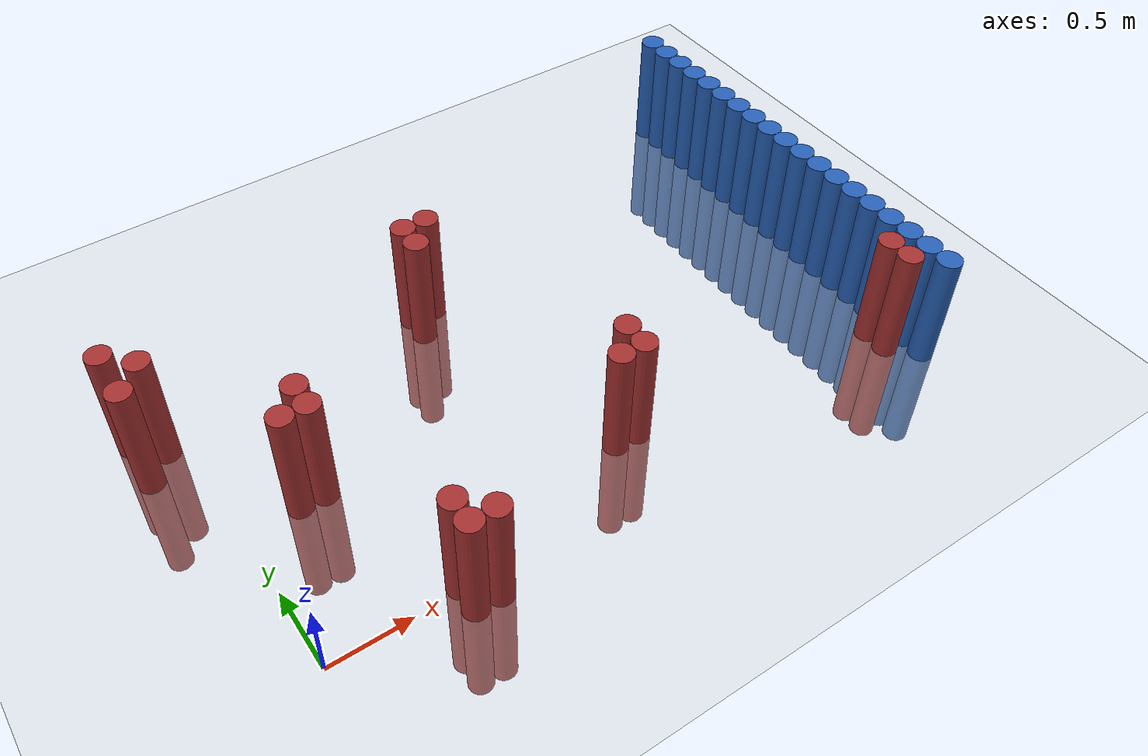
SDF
<sdf version="1.6">
 <world name="default">
  <model name="ground_plane">
   <static>1</static>
   <link name="link">
    <collision name="collision">
     <geometry><plane><normal>0 0 1</normal><size>100 100</size></plane></geometry>
     <surface><friction><ode><mu>100</mu><mu2>50</mu2></ode></friction></surface>
    </collision>
    <visual name="visual">
     <cast_shadows>0</cast_shadows>
     <geometry><plane><normal>0 0 1</normal><size>100 100</size></plane></geometry>
     <material>
      <script><uri>file://media/materials/scripts/gazebo.material</uri><name>Gazebo/Grey</name></script>
     </material>
    </visual>
   </link>
  </model>
  <model name="unit_cylinder_114">
   <static>1</static>
   <pose>3.925000 0.025000 0.000000 0.000000 0.000000 0.000000</pose>
   <link name="link">
    <inertial>
     <mass>1</mass>
     <inertia><ixx>0.145833</ixx><ixy>0</ixy><ixz>0</ixz><iyy>0.145833</iyy><iyz>0</iyz><izz>0.125</izz></inertia>
    </inertial>
    <collision name="collision">
     <geometry><cylinder><radius>0.075000</radius><length>1.5</length></cylinder></geometry>
    </collision>
    <visual name="visual">
     <geometry><cylinder><radius>0.075000</radius><length>1.5</length></cylinder></geometry>
     <material>
      <ambient>0.152000 0.379000 0.720000 1</ambient>
      <diffuse>0.152000 0.379000 0.720000 1</diffuse>
     </material>
     <material>
      <script><name>Gazebo/Grey</name><uri>file://media/materials/scripts/gazebo.material</uri></script>
     </material>
    </visual>
   </link>
  </model>
  <model name="unit_cylinder_116">
   <static>1</static>
   <pose>3.925000 0.175000 0.000000 0.000000 0.000000 0.000000</pose>
   <link name="link">
    <inertial>
     <mass>1</mass>
     <inertia><ixx>0.145833</ixx><ixy>0</ixy><ixz>0</ixz><iyy>0.145833</iyy><iyz>0</iyz><izz>0.125</izz></inertia>
    </inertial>
    <collision name="collision">
     <geometry><cylinder><radius>0.075000</radius><length>1.5</length></cylinder></geometry>
    </collision>
    <visual name="visual">
     <geometry><cylinder><radius>0.075000</radius><length>1.5</length></cylinder></geometry>
     <material>
      <ambient>0.152000 0.379000 0.720000 1</ambient>
      <diffuse>0.152000 0.379000 0.720000 1</diffuse>
     </material>
     <material>
      <script><name>Gazebo/Grey</name><uri>file://media/materials/scripts/gazebo.material</uri></script>
     </material>
    </visual>
   </link>
  </model>
  <model name="unit_cylinder_118">
   <static>1</static>
   <pose>3.925000 0.325000 0.000000 0.000000 0.000000 0.000000</pose>
   <link name="link">
    <inertial>
     <mass>1</mass>
     <inertia><ixx>0.145833</ixx><ixy>0</ixy><ixz>0</ixz><iyy>0.145833</iyy><iyz>0</iyz><izz>0.125</izz></inertia>
    </inertial>
    <collision name="collision">
     <geometry><cylinder><radius>0.075000</radius><length>1.5</length></cylinder></geometry>
    </collision>
    <visual name="visual">
     <geometry><cylinder><radius>0.075000</radius><length>1.5</length></cylinder></geometry>
     <material>
      <ambient>0.152000 0.379000 0.720000 1</ambient>
      <diffuse>0.152000 0.379000 0.720000 1</diffuse>
     </material>
     <material>
      <script><name>Gazebo/Grey</name><uri>file://media/materials/scripts/gazebo.material</uri></script>
     </material>
    </visual>
   </link>
  </model>
  <model name="unit_cylinder_120">
   <static>1</static>
   <pose>3.925000 0.475000 0.000000 0.000000 0.000000 0.000000</pose>
   <link name="link">
    <inertial>
     <mass>1</mass>
     <inertia><ixx>0.145833</ixx><ixy>0</ixy><ixz>0</ixz><iyy>0.145833</iyy><iyz>0</iyz><izz>0.125</izz></inertia>
    </inertial>
    <collision name="collision">
     <geometry><cylinder><radius>0.075000</radius><length>1.5</length></cylinder></geometry>
    </collision>
    <visual name="visual">
     <geometry><cylinder><radius>0.075000</radius><length>1.5</length></cylinder></geometry>
     <material>
      <ambient>0.152000 0.379000 0.720000 1</ambient>
      <diffuse>0.152000 0.379000 0.720000 1</diffuse>
     </material>
     <material>
      <script><name>Gazebo/Grey</name><uri>file://media/materials/scripts/gazebo.material</uri></script>
     </material>
    </visual>
   </link>
  </model>
  <model name="unit_cylinder_122">
   <static>1</static>
   <pose>3.925000 0.625000 0.000000 0.000000 0.000000 0.000000</pose>
   <link name="link">
    <inertial>
     <mass>1</mass>
     <inertia><ixx>0.145833</ixx><ixy>0</ixy><ixz>0</ixz><iyy>0.145833</iyy><iyz>0</iyz><izz>0.125</izz></inertia>
    </inertial>
    <collision name="collision">
     <geometry><cylinder><radius>0.075000</radius><length>1.5</length></cylinder></geometry>
    </collision>
    <visual name="visual">
     <geometry><cylinder><radius>0.075000</radius><length>1.5</length></cylinder></geometry>
     <material>
      <ambient>0.152000 0.379000 0.720000 1</ambient>
      <diffuse>0.152000 0.379000 0.720000 1</diffuse>
     </material>
     <material>
      <script><name>Gazebo/Grey</name><uri>file://media/materials/scripts/gazebo.material</uri></script>
     </material>
    </visual>
   </link>
  </model>
  <model name="unit_cylinder_124">
   <static>1</static>
   <pose>3.925000 0.775000 0.000000 0.000000 0.000000 0.000000</pose>
   <link name="link">
    <inertial>
     <mass>1</mass>
     <inertia><ixx>0.145833</ixx><ixy>0</ixy><ixz>0</ixz><iyy>0.145833</iyy><iyz>0</iyz><izz>0.125</izz></inertia>
    </inertial>
    <collision name="collision">
     <geometry><cylinder><radius>0.075000</radius><length>1.5</length></cylinder></geometry>
    </collision>
    <visual name="visual">
     <geometry><cylinder><radius>0.075000</radius><length>1.5</length></cylinder></geometry>
     <material>
      <ambient>0.152000 0.379000 0.720000 1</ambient>
      <diffuse>0.152000 0.379000 0.720000 1</diffuse>
     </material>
     <material>
      <script><name>Gazebo/Grey</name><uri>file://media/materials/scripts/gazebo.material</uri></script>
     </material>
    </visual>
   </link>
  </model>
  <model name="unit_cylinder_126">
   <static>1</static>
   <pose>3.925000 0.925000 0.000000 0.000000 0.000000 0.000000</pose>
   <link name="link">
    <inertial>
     <mass>1</mass>
     <inertia><ixx>0.145833</ixx><ixy>0</ixy><ixz>0</ixz><iyy>0.145833</iyy><iyz>0</iyz><izz>0.125</izz></inertia>
    </inertial>
    <collision name="collision">
     <geometry><cylinder><radius>0.075000</radius><length>1.5</length></cylinder></geometry>
    </collision>
    <visual name="visual">
     <geometry><cylinder><radius>0.075000</radius><length>1.5</length></cylinder></geometry>
     <material>
      <ambient>0.152000 0.379000 0.720000 1</ambient>
      <diffuse>0.152000 0.379000 0.720000 1</diffuse>
     </material>
     <material>
      <script><name>Gazebo/Grey</name><uri>file://media/materials/scripts/gazebo.material</uri></script>
     </material>
    </visual>
   </link>
  </model>
  <model name="unit_cylinder_128">
   <static>1</static>
   <pose>3.925000 1.075000 0.000000 0.000000 0.000000 0.000000</pose>
   <link name="link">
    <inertial>
     <mass>1</mass>
     <inertia><ixx>0.145833</ixx><ixy>0</ixy><ixz>0</ixz><iyy>0.145833</iyy><iyz>0</iyz><izz>0.125</izz></inertia>
    </inertial>
    <collision name="collision">
     <geometry><cylinder><radius>0.075000</radius><length>1.5</length></cylinder></geometry>
    </collision>
    <visual name="visual">
     <geometry><cylinder><radius>0.075000</radius><length>1.5</length></cylinder></geometry>
     <material>
      <ambient>0.152000 0.379000 0.720000 1</ambient>
      <diffuse>0.152000 0.379000 0.720000 1</diffuse>
     </material>
     <material>
      <script><name>Gazebo/Grey</name><uri>file://media/materials/scripts/gazebo.material</uri></script>
     </material>
    </visual>
   </link>
  </model>
  <model name="unit_cylinder_130">
   <static>1</static>
   <pose>3.925000 1.225000 0.000000 0.000000 0.000000 0.000000</pose>
   <link name="link">
    <inertial>
     <mass>1</mass>
     <inertia><ixx>0.145833</ixx><ixy>0</ixy><ixz>0</ixz><iyy>0.145833</iyy><iyz>0</iyz><izz>0.125</izz></inertia>
    </inertial>
    <collision name="collision">
     <geometry><cylinder><radius>0.075000</radius><length>1.5</length></cylinder></geometry>
    </collision>
    <visual name="visual">
     <geometry><cylinder><radius>0.075000</radius><length>1.5</length></cylinder></geometry>
     <material>
      <ambient>0.152000 0.379000 0.720000 1</ambient>
      <diffuse>0.152000 0.379000 0.720000 1</diffuse>
     </material>
     <material>
      <script><name>Gazebo/Grey</name><uri>file://media/materials/scripts/gazebo.material</uri></script>
     </material>
    </visual>
   </link>
  </model>
  <model name="unit_cylinder_132">
   <static>1</static>
   <pose>3.925000 1.375000 0.000000 0.000000 0.000000 0.000000</pose>
   <link name="link">
    <inertial>
     <mass>1</mass>
     <inertia><ixx>0.145833</ixx><ixy>0</ixy><ixz>0</ixz><iyy>0.145833</iyy><iyz>0</iyz><izz>0.125</izz></inertia>
    </inertial>
    <collision name="collision">
     <geometry><cylinder><radius>0.075000</radius><length>1.5</length></cylinder></geometry>
    </collision>
    <visual name="visual">
     <geometry><cylinder><radius>0.075000</radius><length>1.5</length></cylinder></geometry>
     <material>
      <ambient>0.152000 0.379000 0.720000 1</ambient>
      <diffuse>0.152000 0.379000 0.720000 1</diffuse>
     </material>
     <material>
      <script><name>Gazebo/Grey</name><uri>file://media/materials/scripts/gazebo.material</uri></script>
     </material>
    </visual>
   </link>
  </model>
  <model name="unit_cylinder_134">
   <static>1</static>
   <pose>3.925000 1.525000 0.000000 0.000000 0.000000 0.000000</pose>
   <link name="link">
    <inertial>
     <mass>1</mass>
     <inertia><ixx>0.145833</ixx><ixy>0</ixy><ixz>0</ixz><iyy>0.145833</iyy><iyz>0</iyz><izz>0.125</izz></inertia>
    </inertial>
    <collision name="collision">
     <geometry><cylinder><radius>0.075000</radius><length>1.5</length></cylinder></geometry>
    </collision>
    <visual name="visual">
     <geometry><cylinder><radius>0.075000</radius><length>1.5</length></cylinder></geometry>
     <material>
      <ambient>0.152000 0.379000 0.720000 1</ambient>
      <diffuse>0.152000 0.379000 0.720000 1</diffuse>
     </material>
     <material>
      <script><name>Gazebo/Grey</name><uri>file://media/materials/scripts/gazebo.material</uri></script>
     </material>
    </visual>
   </link>
  </model>
  <model name="unit_cylinder_136">
   <static>1</static>
   <pose>3.925000 1.675000 0.000000 0.000000 0.000000 0.000000</pose>
   <link name="link">
    <inertial>
     <mass>1</mass>
     <inertia><ixx>0.145833</ixx><ixy>0</ixy><ixz>0</ixz><iyy>0.145833</iyy><iyz>0</iyz><izz>0.125</izz></inertia>
    </inertial>
    <collision name="collision">
     <geometry><cylinder><radius>0.075000</radius><length>1.5</length></cylinder></geometry>
    </collision>
    <visual name="visual">
     <geometry><cylinder><radius>0.075000</radius><length>1.5</length></cylinder></geometry>
     <material>
      <ambient>0.152000 0.379000 0.720000 1</ambient>
      <diffuse>0.152000 0.379000 0.720000 1</diffuse>
     </material>
     <material>
      <script><name>Gazebo/Grey</name><uri>file://media/materials/scripts/gazebo.material</uri></script>
     </material>
    </visual>
   </link>
  </model>
  <model name="unit_cylinder_138">
   <static>1</static>
   <pose>3.925000 1.825000 0.000000 0.000000 0.000000 0.000000</pose>
   <link name="link">
    <inertial>
     <mass>1</mass>
     <inertia><ixx>0.145833</ixx><ixy>0</ixy><ixz>0</ixz><iyy>0.145833</iyy><iyz>0</iyz><izz>0.125</izz></inertia>
    </inertial>
    <collision name="collision">
     <geometry><cylinder><radius>0.075000</radius><length>1.5</length></cylinder></geometry>
    </collision>
    <visual name="visual">
     <geometry><cylinder><radius>0.075000</radius><length>1.5</length></cylinder></geometry>
     <material>
      <ambient>0.152000 0.379000 0.720000 1</ambient>
      <diffuse>0.152000 0.379000 0.720000 1</diffuse>
     </material>
     <material>
      <script><name>Gazebo/Grey</name><uri>file://media/materials/scripts/gazebo.material</uri></script>
     </material>
    </visual>
   </link>
  </model>
  <model name="unit_cylinder_140">
   <static>1</static>
   <pose>3.925000 1.975000 0.000000 0.000000 0.000000 0.000000</pose>
   <link name="link">
    <inertial>
     <mass>1</mass>
     <inertia><ixx>0.145833</ixx><ixy>0</ixy><ixz>0</ixz><iyy>0.145833</iyy><iyz>0</iyz><izz>0.125</izz></inertia>
    </inertial>
    <collision name="collision">
     <geometry><cylinder><radius>0.075000</radius><length>1.5</length></cylinder></geometry>
    </collision>
    <visual name="visual">
     <geometry><cylinder><radius>0.075000</radius><length>1.5</length></cylinder></geometry>
     <material>
      <ambient>0.152000 0.379000 0.720000 1</ambient>
      <diffuse>0.152000 0.379000 0.720000 1</diffuse>
     </material>
     <material>
      <script><name>Gazebo/Grey</name><uri>file://media/materials/scripts/gazebo.material</uri></script>
     </material>
    </visual>
   </link>
  </model>
  <model name="unit_cylinder_142">
   <static>1</static>
   <pose>3.925000 2.125000 0.000000 0.000000 0.000000 0.000000</pose>
   <link name="link">
    <inertial>
     <mass>1</mass>
     <inertia><ixx>0.145833</ixx><ixy>0</ixy><ixz>0</ixz><iyy>0.145833</iyy><iyz>0</iyz><izz>0.125</izz></inertia>
    </inertial>
    <collision name="collision">
     <geometry><cylinder><radius>0.075000</radius><length>1.5</length></cylinder></geometry>
    </collision>
    <visual name="visual">
     <geometry><cylinder><radius>0.075000</radius><length>1.5</length></cylinder></geometry>
     <material>
      <ambient>0.152000 0.379000 0.720000 1</ambient>
      <diffuse>0.152000 0.379000 0.720000 1</diffuse>
     </material>
     <material>
      <script><name>Gazebo/Grey</name><uri>file://media/materials/scripts/gazebo.material</uri></script>
     </material>
    </visual>
   </link>
  </model>
  <model name="unit_cylinder_144">
   <static>1</static>
   <pose>3.925000 2.275000 0.000000 0.000000 0.000000 0.000000</pose>
   <link name="link">
    <inertial>
     <mass>1</mass>
     <inertia><ixx>0.145833</ixx><ixy>0</ixy><ixz>0</ixz><iyy>0.145833</iyy><iyz>0</iyz><izz>0.125</izz></inertia>
    </inertial>
    <collision name="collision">
     <geometry><cylinder><radius>0.075000</radius><length>1.5</length></cylinder></geometry>
    </collision>
    <visual name="visual">
     <geometry><cylinder><radius>0.075000</radius><length>1.5</length></cylinder></geometry>
     <material>
      <ambient>0.152000 0.379000 0.720000 1</ambient>
      <diffuse>0.152000 0.379000 0.720000 1</diffuse>
     </material>
     <material>
      <script><name>Gazebo/Grey</name><uri>file://media/materials/scripts/gazebo.material</uri></script>
     </material>
    </visual>
   </link>
  </model>
  <model name="unit_cylinder_146">
   <static>1</static>
   <pose>3.925000 2.425000 0.000000 0.000000 0.000000 0.000000</pose>
   <link name="link">
    <inertial>
     <mass>1</mass>
     <inertia><ixx>0.145833</ixx><ixy>0</ixy><ixz>0</ixz><iyy>0.145833</iyy><iyz>0</iyz><izz>0.125</izz></inertia>
    </inertial>
    <collision name="collision">
     <geometry><cylinder><radius>0.075000</radius><length>1.5</length></cylinder></geometry>
    </collision>
    <visual name="visual">
     <geometry><cylinder><radius>0.075000</radius><length>1.5</length></cylinder></geometry>
     <material>
      <ambient>0.152000 0.379000 0.720000 1</ambient>
      <diffuse>0.152000 0.379000 0.720000 1</diffuse>
     </material>
     <material>
      <script><name>Gazebo/Grey</name><uri>file://media/materials/scripts/gazebo.material</uri></script>
     </material>
    </visual>
   </link>
  </model>
  <model name="unit_cylinder_148">
   <static>1</static>
   <pose>3.925000 2.575000 0.000000 0.000000 0.000000 0.000000</pose>
   <link name="link">
    <inertial>
     <mass>1</mass>
     <inertia><ixx>0.145833</ixx><ixy>0</ixy><ixz>0</ixz><iyy>0.145833</iyy><iyz>0</iyz><izz>0.125</izz></inertia>
    </inertial>
    <collision name="collision">
     <geometry><cylinder><radius>0.075000</radius><length>1.5</length></cylinder></geometry>
    </collision>
    <visual name="visual">
     <geometry><cylinder><radius>0.075000</radius><length>1.5</length></cylinder></geometry>
     <material>
      <ambient>0.152000 0.379000 0.720000 1</ambient>
      <diffuse>0.152000 0.379000 0.720000 1</diffuse>
     </material>
     <material>
      <script><name>Gazebo/Grey</name><uri>file://media/materials/scripts/gazebo.material</uri></script>
     </material>
    </visual>
   </link>
  </model>
  <model name="unit_cylinder_295">
   <static>1</static>
   <pose>-0.275000 1.525000 0.000000 0.000000 0.000000 0.000000</pose>
   <link name="link">
    <inertial>
     <mass>1</mass>
     <inertia><ixx>0.145833</ixx><ixy>0</ixy><ixz>0</ixz><iyy>0.145833</iyy><iyz>0</iyz><izz>0.125</izz></inertia>
    </inertial>
    <collision name="collision">
     <geometry><cylinder><radius>0.075000</radius><length>1.5</length></cylinder></geometry>
    </collision>
    <visual name="visual">
     <geometry><cylinder><radius>0.075000</radius><length>1.5</length></cylinder></geometry>
     <material>
      <ambient>0.648000 0.192000 0.192000 1</ambient>
      <diffuse>0.648000 0.192000 0.192000 1</diffuse>
     </material>
     <material>
      <script><name>Gazebo/Grey</name><uri>file://media/materials/scripts/gazebo.material</uri></script>
     </material>
    </visual>
   </link>
  </model>
  <model name="unit_cylinder_296">
   <static>1</static>
   <pose>-0.275000 1.825000 0.000000 0.000000 0.000000 0.000000</pose>
   <link name="link">
    <inertial>
     <mass>1</mass>
     <inertia><ixx>0.145833</ixx><ixy>0</ixy><ixz>0</ixz><iyy>0.145833</iyy><iyz>0</iyz><izz>0.125</izz></inertia>
    </inertial>
    <collision name="collision">
     <geometry><cylinder><radius>0.075000</radius><length>1.5</length></cylinder></geometry>
    </collision>
    <visual name="visual">
     <geometry><cylinder><radius>0.075000</radius><length>1.5</length></cylinder></geometry>
     <material>
      <ambient>0.648000 0.192000 0.192000 1</ambient>
      <diffuse>0.648000 0.192000 0.192000 1</diffuse>
     </material>
     <material>
      <script><name>Gazebo/Grey</name><uri>file://media/materials/scripts/gazebo.material</uri></script>
     </material>
    </visual>
   </link>
  </model>
  <model name="unit_cylinder_299">
   <static>1</static>
   <pose>-0.125000 1.675000 0.000000 0.000000 0.000000 0.000000</pose>
   <link name="link">
    <inertial>
     <mass>1</mass>
     <inertia><ixx>0.145833</ixx><ixy>0</ixy><ixz>0</ixz><iyy>0.145833</iyy><iyz>0</iyz><izz>0.125</izz></inertia>
    </inertial>
    <collision name="collision">
     <geometry><cylinder><radius>0.075000</radius><length>1.5</length></cylinder></geometry>
    </collision>
    <visual name="visual">
     <geometry><cylinder><radius>0.075000</radius><length>1.5</length></cylinder></geometry>
     <material>
      <ambient>0.648000 0.192000 0.192000 1</ambient>
      <diffuse>0.648000 0.192000 0.192000 1</diffuse>
     </material>
     <material>
      <script><name>Gazebo/Grey</name><uri>file://media/materials/scripts/gazebo.material</uri></script>
     </material>
    </visual>
   </link>
  </model>
  <model name="unit_cylinder_300">
   <static>1</static>
   <pose>0.325000 0.925000 0.000000 0.000000 0.000000 0.000000</pose>
   <link name="link">
    <inertial>
     <mass>1</mass>
     <inertia><ixx>0.145833</ixx><ixy>0</ixy><ixz>0</ixz><iyy>0.145833</iyy><iyz>0</iyz><izz>0.125</izz></inertia>
    </inertial>
    <collision name="collision">
     <geometry><cylinder><radius>0.075000</radius><length>1.5</length></cylinder></geometry>
    </collision>
    <visual name="visual">
     <geometry><cylinder><radius>0.075000</radius><length>1.5</length></cylinder></geometry>
     <material>
      <ambient>0.648000 0.192000 0.192000 1</ambient>
      <diffuse>0.648000 0.192000 0.192000 1</diffuse>
     </material>
     <material>
      <script><name>Gazebo/Grey</name><uri>file://media/materials/scripts/gazebo.material</uri></script>
     </material>
    </visual>
   </link>
  </model>
  <model name="unit_cylinder_301">
   <static>1</static>
   <pose>0.475000 0.925000 0.000000 0.000000 0.000000 0.000000</pose>
   <link name="link">
    <inertial>
     <mass>1</mass>
     <inertia><ixx>0.145833</ixx><ixy>0</ixy><ixz>0</ixz><iyy>0.145833</iyy><iyz>0</iyz><izz>0.125</izz></inertia>
    </inertial>
    <collision name="collision">
     <geometry><cylinder><radius>0.075000</radius><length>1.5</length></cylinder></geometry>
    </collision>
    <visual name="visual">
     <geometry><cylinder><radius>0.075000</radius><length>1.5</length></cylinder></geometry>
     <material>
      <ambient>0.648000 0.192000 0.192000 1</ambient>
      <diffuse>0.648000 0.192000 0.192000 1</diffuse>
     </material>
     <material>
      <script><name>Gazebo/Grey</name><uri>file://media/materials/scripts/gazebo.material</uri></script>
     </material>
    </visual>
   </link>
  </model>
  <model name="unit_cylinder_302">
   <static>1</static>
   <pose>0.475000 1.075000 0.000000 0.000000 0.000000 0.000000</pose>
   <link name="link">
    <inertial>
     <mass>1</mass>
     <inertia><ixx>0.145833</ixx><ixy>0</ixy><ixz>0</ixz><iyy>0.145833</iyy><iyz>0</iyz><izz>0.125</izz></inertia>
    </inertial>
    <collision name="collision">
     <geometry><cylinder><radius>0.075000</radius><length>1.5</length></cylinder></geometry>
    </collision>
    <visual name="visual">
     <geometry><cylinder><radius>0.075000</radius><length>1.5</length></cylinder></geometry>
     <material>
      <ambient>0.648000 0.192000 0.192000 1</ambient>
      <diffuse>0.648000 0.192000 0.192000 1</diffuse>
     </material>
     <material>
      <script><name>Gazebo/Grey</name><uri>file://media/materials/scripts/gazebo.material</uri></script>
     </material>
    </visual>
   </link>
  </model>
  <model name="unit_cylinder_303">
   <static>1</static>
   <pose>0.775000 -0.125000 0.000000 0.000000 0.000000 0.000000</pose>
   <link name="link">
    <inertial>
     <mass>1</mass>
     <inertia><ixx>0.145833</ixx><ixy>0</ixy><ixz>0</ixz><iyy>0.145833</iyy><iyz>0</iyz><izz>0.125</izz></inertia>
    </inertial>
    <collision name="collision">
     <geometry><cylinder><radius>0.075000</radius><length>1.5</length></cylinder></geometry>
    </collision>
    <visual name="visual">
     <geometry><cylinder><radius>0.075000</radius><length>1.5</length></cylinder></geometry>
     <material>
      <ambient>0.648000 0.192000 0.192000 1</ambient>
      <diffuse>0.648000 0.192000 0.192000 1</diffuse>
     </material>
     <material>
      <script><name>Gazebo/Grey</name><uri>file://media/materials/scripts/gazebo.material</uri></script>
     </material>
    </visual>
   </link>
  </model>
  <model name="unit_cylinder_304">
   <static>1</static>
   <pose>0.775000 0.025000 0.000000 0.000000 0.000000 0.000000</pose>
   <link name="link">
    <inertial>
     <mass>1</mass>
     <inertia><ixx>0.145833</ixx><ixy>0</ixy><ixz>0</ixz><iyy>0.145833</iyy><iyz>0</iyz><izz>0.125</izz></inertia>
    </inertial>
    <collision name="collision">
     <geometry><cylinder><radius>0.075000</radius><length>1.5</length></cylinder></geometry>
    </collision>
    <visual name="visual">
     <geometry><cylinder><radius>0.075000</radius><length>1.5</length></cylinder></geometry>
     <material>
      <ambient>0.648000 0.192000 0.192000 1</ambient>
      <diffuse>0.648000 0.192000 0.192000 1</diffuse>
     </material>
     <material>
      <script><name>Gazebo/Grey</name><uri>file://media/materials/scripts/gazebo.material</uri></script>
     </material>
    </visual>
   </link>
  </model>
  <model name="unit_cylinder_305">
   <static>1</static>
   <pose>0.925000 -0.125000 0.000000 0.000000 0.000000 0.000000</pose>
   <link name="link">
    <inertial>
     <mass>1</mass>
     <inertia><ixx>0.145833</ixx><ixy>0</ixy><ixz>0</ixz><iyy>0.145833</iyy><iyz>0</iyz><izz>0.125</izz></inertia>
    </inertial>
    <collision name="collision">
     <geometry><cylinder><radius>0.075000</radius><length>1.5</length></cylinder></geometry>
    </collision>
    <visual name="visual">
     <geometry><cylinder><radius>0.075000</radius><length>1.5</length></cylinder></geometry>
     <material>
      <ambient>0.648000 0.192000 0.192000 1</ambient>
      <diffuse>0.648000 0.192000 0.192000 1</diffuse>
     </material>
     <material>
      <script><name>Gazebo/Grey</name><uri>file://media/materials/scripts/gazebo.material</uri></script>
     </material>
    </visual>
   </link>
  </model>
  <model name="unit_cylinder_306">
   <static>1</static>
   <pose>1.525000 1.675000 0.000000 0.000000 0.000000 0.000000</pose>
   <link name="link">
    <inertial>
     <mass>1</mass>
     <inertia><ixx>0.145833</ixx><ixy>0</ixy><ixz>0</ixz><iyy>0.145833</iyy><iyz>0</iyz><izz>0.125</izz></inertia>
    </inertial>
    <collision name="collision">
     <geometry><cylinder><radius>0.075000</radius><length>1.5</length></cylinder></geometry>
    </collision>
    <visual name="visual">
     <geometry><cylinder><radius>0.075000</radius><length>1.5</length></cylinder></geometry>
     <material>
      <ambient>0.648000 0.192000 0.192000 1</ambient>
      <diffuse>0.648000 0.192000 0.192000 1</diffuse>
     </material>
     <material>
      <script><name>Gazebo/Grey</name><uri>file://media/materials/scripts/gazebo.material</uri></script>
     </material>
    </visual>
   </link>
  </model>
  <model name="unit_cylinder_307">
   <static>1</static>
   <pose>1.525000 1.825000 0.000000 0.000000 0.000000 0.000000</pose>
   <link name="link">
    <inertial>
     <mass>1</mass>
     <inertia><ixx>0.145833</ixx><ixy>0</ixy><ixz>0</ixz><iyy>0.145833</iyy><iyz>0</iyz><izz>0.125</izz></inertia>
    </inertial>
    <collision name="collision">
     <geometry><cylinder><radius>0.075000</radius><length>1.5</length></cylinder></geometry>
    </collision>
    <visual name="visual">
     <geometry><cylinder><radius>0.075000</radius><length>1.5</length></cylinder></geometry>
     <material>
      <ambient>0.648000 0.192000 0.192000 1</ambient>
      <diffuse>0.648000 0.192000 0.192000 1</diffuse>
     </material>
     <material>
      <script><name>Gazebo/Grey</name><uri>file://media/materials/scripts/gazebo.material</uri></script>
     </material>
    </visual>
   </link>
  </model>
  <model name="unit_cylinder_308">
   <static>1</static>
   <pose>1.675000 1.825000 0.000000 0.000000 0.000000 0.000000</pose>
   <link name="link">
    <inertial>
     <mass>1</mass>
     <inertia><ixx>0.145833</ixx><ixy>0</ixy><ixz>0</ixz><iyy>0.145833</iyy><iyz>0</iyz><izz>0.125</izz></inertia>
    </inertial>
    <collision name="collision">
     <geometry><cylinder><radius>0.075000</radius><length>1.5</length></cylinder></geometry>
    </collision>
    <visual name="visual">
     <geometry><cylinder><radius>0.075000</radius><length>1.5</length></cylinder></geometry>
     <material>
      <ambient>0.648000 0.192000 0.192000 1</ambient>
      <diffuse>0.648000 0.192000 0.192000 1</diffuse>
     </material>
     <material>
      <script><name>Gazebo/Grey</name><uri>file://media/materials/scripts/gazebo.material</uri></script>
     </material>
    </visual>
   </link>
  </model>
  <model name="unit_cylinder_309">
   <static>1</static>
   <pose>1.975000 0.325000 0.000000 0.000000 0.000000 0.000000</pose>
   <link name="link">
    <inertial>
     <mass>1</mass>
     <inertia><ixx>0.145833</ixx><ixy>0</ixy><ixz>0</ixz><iyy>0.145833</iyy><iyz>0</iyz><izz>0.125</izz></inertia>
    </inertial>
    <collision name="collision">
     <geometry><cylinder><radius>0.075000</radius><length>1.5</length></cylinder></geometry>
    </collision>
    <visual name="visual">
     <geometry><cylinder><radius>0.075000</radius><length>1.5</length></cylinder></geometry>
     <material>
      <ambient>0.648000 0.192000 0.192000 1</ambient>
      <diffuse>0.648000 0.192000 0.192000 1</diffuse>
     </material>
     <material>
      <script><name>Gazebo/Grey</name><uri>file://media/materials/scripts/gazebo.material</uri></script>
     </material>
    </visual>
   </link>
  </model>
  <model name="unit_cylinder_312">
   <static>1</static>
   <pose>2.125000 0.325000 0.000000 0.000000 0.000000 0.000000</pose>
   <link name="link">
    <inertial>
     <mass>1</mass>
     <inertia><ixx>0.145833</ixx><ixy>0</ixy><ixz>0</ixz><iyy>0.145833</iyy><iyz>0</iyz><izz>0.125</izz></inertia>
    </inertial>
    <collision name="collision">
     <geometry><cylinder><radius>0.075000</radius><length>1.5</length></cylinder></geometry>
    </collision>
    <visual name="visual">
     <geometry><cylinder><radius>0.075000</radius><length>1.5</length></cylinder></geometry>
     <material>
      <ambient>0.648000 0.192000 0.192000 1</ambient>
      <diffuse>0.648000 0.192000 0.192000 1</diffuse>
     </material>
     <material>
      <script><name>Gazebo/Grey</name><uri>file://media/materials/scripts/gazebo.material</uri></script>
     </material>
    </visual>
   </link>
  </model>
  <model name="unit_cylinder_313">
   <static>1</static>
   <pose>2.125000 0.475000 0.000000 0.000000 0.000000 0.000000</pose>
   <link name="link">
    <inertial>
     <mass>1</mass>
     <inertia><ixx>0.145833</ixx><ixy>0</ixy><ixz>0</ixz><iyy>0.145833</iyy><iyz>0</iyz><izz>0.125</izz></inertia>
    </inertial>
    <collision name="collision">
     <geometry><cylinder><radius>0.075000</radius><length>1.5</length></cylinder></geometry>
    </collision>
    <visual name="visual">
     <geometry><cylinder><radius>0.075000</radius><length>1.5</length></cylinder></geometry>
     <material>
      <ambient>0.648000 0.192000 0.192000 1</ambient>
      <diffuse>0.648000 0.192000 0.192000 1</diffuse>
     </material>
     <material>
      <script><name>Gazebo/Grey</name><uri>file://media/materials/scripts/gazebo.material</uri></script>
     </material>
    </visual>
   </link>
  </model>
  <model name="unit_cylinder_326">
   <static>1</static>
   <pose>3.775000 0.025000 0.000000 0.000000 0.000000 0.000000</pose>
   <link name="link">
    <inertial>
     <mass>1</mass>
     <inertia><ixx>0.145833</ixx><ixy>0</ixy><ixz>0</ixz><iyy>0.145833</iyy><iyz>0</iyz><izz>0.125</izz></inertia>
    </inertial>
    <collision name="collision">
     <geometry><cylinder><radius>0.075000</radius><length>1.5</length></cylinder></geometry>
    </collision>
    <visual name="visual">
     <geometry><cylinder><radius>0.075000</radius><length>1.5</length></cylinder></geometry>
     <material>
      <ambient>0.648000 0.192000 0.192000 1</ambient>
      <diffuse>0.648000 0.192000 0.192000 1</diffuse>
     </material>
     <material>
      <script><name>Gazebo/Grey</name><uri>file://media/materials/scripts/gazebo.material</uri></script>
     </material>
    </visual>
   </link>
  </model>
  <model name="unit_cylinder_327">
   <static>1</static>
   <pose>3.775000 0.175000 0.000000 0.000000 0.000000 0.000000</pose>
   <link name="link">
    <inertial>
     <mass>1</mass>
     <inertia><ixx>0.145833</ixx><ixy>0</ixy><ixz>0</ixz><iyy>0.145833</iyy><iyz>0</iyz><izz>0.125</izz></inertia>
    </inertial>
    <collision name="collision">
     <geometry><cylinder><radius>0.075000</radius><length>1.5</length></cylinder></geometry>
    </collision>
    <visual name="visual">
     <geometry><cylinder><radius>0.075000</radius><length>1.5</length></cylinder></geometry>
     <material>
      <ambient>0.648000 0.192000 0.192000 1</ambient>
      <diffuse>0.648000 0.192000 0.192000 1</diffuse>
     </material>
     <material>
      <script><name>Gazebo/Grey</name><uri>file://media/materials/scripts/gazebo.material</uri></script>
     </material>
    </visual>
   </link>
  </model>
  <model name="unit_cylinder_342">
   <static>1</static>
   <pose>3.925000 -0.125000 0.000000 0.000000 0.000000 0.000000</pose>
   <link name="link">
    <inertial>
     <mass>1</mass>
     <inertia><ixx>0.145833</ixx><ixy>0</ixy><ixz>0</ixz><iyy>0.145833</iyy><iyz>0</iyz><izz>0.125</izz></inertia>
    </inertial>
    <collision name="collision">
     <geometry><cylinder><radius>0.075000</radius><length>1.5</length></cylinder></geometry>
    </collision>
    <visual name="visual">
     <geometry><cylinder><radius>0.075000</radius><length>1.5</length></cylinder></geometry>
     <material>
      <ambient>0.152000 0.379000 0.720000 1</ambient>
      <diffuse>0.152000 0.379000 0.720000 1</diffuse>
     </material>
     <material>
      <script><name>Gazebo/Grey</name><uri>file://media/materials/scripts/gazebo.material</uri></script>
     </material>
    </visual>
   </link>
  </model>
  <model name="unit_cylinder_343">
   <static>1</static>
   <pose>3.925000 0.025000 0.000000 0.000000 0.000000 0.000000</pose>
   <link name="link">
    <inertial>
     <mass>1</mass>
     <inertia><ixx>0.145833</ixx><ixy>0</ixy><ixz>0</ixz><iyy>0.145833</iyy><iyz>0</iyz><izz>0.125</izz></inertia>
    </inertial>
    <collision name="collision">
     <geometry><cylinder><radius>0.075000</radius><length>1.5</length></cylinder></geometry>
    </collision>
    <visual name="visual">
     <geometry><cylinder><radius>0.075000</radius><length>1.5</length></cylinder></geometry>
     <material>
      <ambient>0.152000 0.379000 0.720000 1</ambient>
      <diffuse>0.152000 0.379000 0.720000 1</diffuse>
     </material>
     <material>
      <script><name>Gazebo/Grey</name><uri>file://media/materials/scripts/gazebo.material</uri></script>
     </material>
    </visual>
   </link>
  </model>
  <model name="unit_cylinder_344">
   <static>1</static>
   <pose>3.925000 0.175000 0.000000 0.000000 0.000000 0.000000</pose>
   <link name="link">
    <inertial>
     <mass>1</mass>
     <inertia><ixx>0.145833</ixx><ixy>0</ixy><ixz>0</ixz><iyy>0.145833</iyy><iyz>0</iyz><izz>0.125</izz></inertia>
    </inertial>
    <collision name="collision">
     <geometry><cylinder><radius>0.075000</radius><length>1.5</length></cylinder></geometry>
    </collision>
    <visual name="visual">
     <geometry><cylinder><radius>0.075000</radius><length>1.5</length></cylinder></geometry>
     <material>
      <ambient>0.152000 0.379000 0.720000 1</ambient>
      <diffuse>0.152000 0.379000 0.720000 1</diffuse>
     </material>
     <material>
      <script><name>Gazebo/Grey</name><uri>file://media/materials/scripts/gazebo.material</uri></script>
     </material>
    </visual>
   </link>
  </model>
  <model name="unit_cylinder_345">
   <static>1</static>
   <pose>3.925000 0.325000 0.000000 0.000000 0.000000 0.000000</pose>
   <link name="link">
    <inertial>
     <mass>1</mass>
     <inertia><ixx>0.145833</ixx><ixy>0</ixy><ixz>0</ixz><iyy>0.145833</iyy><iyz>0</iyz><izz>0.125</izz></inertia>
    </inertial>
    <collision name="collision">
     <geometry><cylinder><radius>0.075000</radius><length>1.5</length></cylinder></geometry>
    </collision>
    <visual name="visual">
     <geometry><cylinder><radius>0.075000</radius><length>1.5</length></cylinder></geometry>
     <material>
      <ambient>0.152000 0.379000 0.720000 1</ambient>
      <diffuse>0.152000 0.379000 0.720000 1</diffuse>
     </material>
     <material>
      <script><name>Gazebo/Grey</name><uri>file://media/materials/scripts/gazebo.material</uri></script>
     </material>
    </visual>
   </link>
  </model>
  <model name="unit_cylinder_346">
   <static>1</static>
   <pose>3.925000 0.475000 0.000000 0.000000 0.000000 0.000000</pose>
   <link name="link">
    <inertial>
     <mass>1</mass>
     <inertia><ixx>0.145833</ixx><ixy>0</ixy><ixz>0</ixz><iyy>0.145833</iyy><iyz>0</iyz><izz>0.125</izz></inertia>
    </inertial>
    <collision name="collision">
     <geometry><cylinder><radius>0.075000</radius><length>1.5</length></cylinder></geometry>
    </collision>
    <visual name="visual">
     <geometry><cylinder><radius>0.075000</radius><length>1.5</length></cylinder></geometry>
     <material>
      <ambient>0.152000 0.379000 0.720000 1</ambient>
      <diffuse>0.152000 0.379000 0.720000 1</diffuse>
     </material>
     <material>
      <script><name>Gazebo/Grey</name><uri>file://media/materials/scripts/gazebo.material</uri></script>
     </material>
    </visual>
   </link>
  </model>
  <model name="unit_cylinder_347">
   <static>1</static>
   <pose>3.925000 0.625000 0.000000 0.000000 0.000000 0.000000</pose>
   <link name="link">
    <inertial>
     <mass>1</mass>
     <inertia><ixx>0.145833</ixx><ixy>0</ixy><ixz>0</ixz><iyy>0.145833</iyy><iyz>0</iyz><izz>0.125</izz></inertia>
    </inertial>
    <collision name="collision">
     <geometry><cylinder><radius>0.075000</radius><length>1.5</length></cylinder></geometry>
    </collision>
    <visual name="visual">
     <geometry><cylinder><radius>0.075000</radius><length>1.5</length></cylinder></geometry>
     <material>
      <ambient>0.152000 0.379000 0.720000 1</ambient>
      <diffuse>0.152000 0.379000 0.720000 1</diffuse>
     </material>
     <material>
      <script><name>Gazebo/Grey</name><uri>file://media/materials/scripts/gazebo.material</uri></script>
     </material>
    </visual>
   </link>
  </model>
  <model name="unit_cylinder_348">
   <static>1</static>
   <pose>3.925000 0.775000 0.000000 0.000000 0.000000 0.000000</pose>
   <link name="link">
    <inertial>
     <mass>1</mass>
     <inertia><ixx>0.145833</ixx><ixy>0</ixy><ixz>0</ixz><iyy>0.145833</iyy><iyz>0</iyz><izz>0.125</izz></inertia>
    </inertial>
    <collision name="collision">
     <geometry><cylinder><radius>0.075000</radius><length>1.5</length></cylinder></geometry>
    </collision>
    <visual name="visual">
     <geometry><cylinder><radius>0.075000</radius><length>1.5</length></cylinder></geometry>
     <material>
      <ambient>0.152000 0.379000 0.720000 1</ambient>
      <diffuse>0.152000 0.379000 0.720000 1</diffuse>
     </material>
     <material>
      <script><name>Gazebo/Grey</name><uri>file://media/materials/scripts/gazebo.material</uri></script>
     </material>
    </visual>
   </link>
  </model>
  <model name="unit_cylinder_349">
   <static>1</static>
   <pose>3.925000 0.925000 0.000000 0.000000 0.000000 0.000000</pose>
   <link name="link">
    <inertial>
     <mass>1</mass>
     <inertia><ixx>0.145833</ixx><ixy>0</ixy><ixz>0</ixz><iyy>0.145833</iyy><iyz>0</iyz><izz>0.125</izz></inertia>
    </inertial>
    <collision name="collision">
     <geometry><cylinder><radius>0.075000</radius><length>1.5</length></cylinder></geometry>
    </collision>
    <visual name="visual">
     <geometry><cylinder><radius>0.075000</radius><length>1.5</length></cylinder></geometry>
     <material>
      <ambient>0.152000 0.379000 0.720000 1</ambient>
      <diffuse>0.152000 0.379000 0.720000 1</diffuse>
     </material>
     <material>
      <script><name>Gazebo/Grey</name><uri>file://media/materials/scripts/gazebo.material</uri></script>
     </material>
    </visual>
   </link>
  </model>
  <model name="unit_cylinder_350">
   <static>1</static>
   <pose>3.925000 1.075000 0.000000 0.000000 0.000000 0.000000</pose>
   <link name="link">
    <inertial>
     <mass>1</mass>
     <inertia><ixx>0.145833</ixx><ixy>0</ixy><ixz>0</ixz><iyy>0.145833</iyy><iyz>0</iyz><izz>0.125</izz></inertia>
    </inertial>
    <collision name="collision">
     <geometry><cylinder><radius>0.075000</radius><length>1.5</length></cylinder></geometry>
    </collision>
    <visual name="visual">
     <geometry><cylinder><radius>0.075000</radius><length>1.5</length></cylinder></geometry>
     <material>
      <ambient>0.152000 0.379000 0.720000 1</ambient>
      <diffuse>0.152000 0.379000 0.720000 1</diffuse>
     </material>
     <material>
      <script><name>Gazebo/Grey</name><uri>file://media/materials/scripts/gazebo.material</uri></script>
     </material>
    </visual>
   </link>
  </model>
  <model name="unit_cylinder_351">
   <static>1</static>
   <pose>3.925000 1.225000 0.000000 0.000000 0.000000 0.000000</pose>
   <link name="link">
    <inertial>
     <mass>1</mass>
     <inertia><ixx>0.145833</ixx><ixy>0</ixy><ixz>0</ixz><iyy>0.145833</iyy><iyz>0</iyz><izz>0.125</izz></inertia>
    </inertial>
    <collision name="collision">
     <geometry><cylinder><radius>0.075000</radius><length>1.5</length></cylinder></geometry>
    </collision>
    <visual name="visual">
     <geometry><cylinder><radius>0.075000</radius><length>1.5</length></cylinder></geometry>
     <material>
      <ambient>0.152000 0.379000 0.720000 1</ambient>
      <diffuse>0.152000 0.379000 0.720000 1</diffuse>
     </material>
     <material>
      <script><name>Gazebo/Grey</name><uri>file://media/materials/scripts/gazebo.material</uri></script>
     </material>
    </visual>
   </link>
  </model>
  <model name="unit_cylinder_352">
   <static>1</static>
   <pose>3.925000 1.375000 0.000000 0.000000 0.000000 0.000000</pose>
   <link name="link">
    <inertial>
     <mass>1</mass>
     <inertia><ixx>0.145833</ixx><ixy>0</ixy><ixz>0</ixz><iyy>0.145833</iyy><iyz>0</iyz><izz>0.125</izz></inertia>
    </inertial>
    <collision name="collision">
     <geometry><cylinder><radius>0.075000</radius><length>1.5</length></cylinder></geometry>
    </collision>
    <visual name="visual">
     <geometry><cylinder><radius>0.075000</radius><length>1.5</length></cylinder></geometry>
     <material>
      <ambient>0.152000 0.379000 0.720000 1</ambient>
      <diffuse>0.152000 0.379000 0.720000 1</diffuse>
     </material>
     <material>
      <script><name>Gazebo/Grey</name><uri>file://media/materials/scripts/gazebo.material</uri></script>
     </material>
    </visual>
   </link>
  </model>
  <model name="unit_cylinder_353">
   <static>1</static>
   <pose>3.925000 1.525000 0.000000 0.000000 0.000000 0.000000</pose>
   <link name="link">
    <inertial>
     <mass>1</mass>
     <inertia><ixx>0.145833</ixx><ixy>0</ixy><ixz>0</ixz><iyy>0.145833</iyy><iyz>0</iyz><izz>0.125</izz></inertia>
    </inertial>
    <collision name="collision">
     <geometry><cylinder><radius>0.075000</radius><length>1.5</length></cylinder></geometry>
    </collision>
    <visual name="visual">
     <geometry><cylinder><radius>0.075000</radius><length>1.5</length></cylinder></geometry>
     <material>
      <ambient>0.152000 0.379000 0.720000 1</ambient>
      <diffuse>0.152000 0.379000 0.720000 1</diffuse>
     </material>
     <material>
      <script><name>Gazebo/Grey</name><uri>file://media/materials/scripts/gazebo.material</uri></script>
     </material>
    </visual>
   </link>
  </model>
  <model name="unit_cylinder_354">
   <static>1</static>
   <pose>3.925000 1.675000 0.000000 0.000000 0.000000 0.000000</pose>
   <link name="link">
    <inertial>
     <mass>1</mass>
     <inertia><ixx>0.145833</ixx><ixy>0</ixy><ixz>0</ixz><iyy>0.145833</iyy><iyz>0</iyz><izz>0.125</izz></inertia>
    </inertial>
    <collision name="collision">
     <geometry><cylinder><radius>0.075000</radius><length>1.5</length></cylinder></geometry>
    </collision>
    <visual name="visual">
     <geometry><cylinder><radius>0.075000</radius><length>1.5</length></cylinder></geometry>
     <material>
      <ambient>0.152000 0.379000 0.720000 1</ambient>
      <diffuse>0.152000 0.379000 0.720000 1</diffuse>
     </material>
     <material>
      <script><name>Gazebo/Grey</name><uri>file://media/materials/scripts/gazebo.material</uri></script>
     </material>
    </visual>
   </link>
  </model>
  <model name="unit_cylinder_355">
   <static>1</static>
   <pose>3.925000 1.825000 0.000000 0.000000 0.000000 0.000000</pose>
   <link name="link">
    <inertial>
     <mass>1</mass>
     <inertia><ixx>0.145833</ixx><ixy>0</ixy><ixz>0</ixz><iyy>0.145833</iyy><iyz>0</iyz><izz>0.125</izz></inertia>
    </inertial>
    <collision name="collision">
     <geometry><cylinder><radius>0.075000</radius><length>1.5</length></cylinder></geometry>
    </collision>
    <visual name="visual">
     <geometry><cylinder><radius>0.075000</radius><length>1.5</length></cylinder></geometry>
     <material>
      <ambient>0.152000 0.379000 0.720000 1</ambient>
      <diffuse>0.152000 0.379000 0.720000 1</diffuse>
     </material>
     <material>
      <script><name>Gazebo/Grey</name><uri>file://media/materials/scripts/gazebo.material</uri></script>
     </material>
    </visual>
   </link>
  </model>
  <model name="unit_cylinder_356">
   <static>1</static>
   <pose>3.925000 1.975000 0.000000 0.000000 0.000000 0.000000</pose>
   <link name="link">
    <inertial>
     <mass>1</mass>
     <inertia><ixx>0.145833</ixx><ixy>0</ixy><ixz>0</ixz><iyy>0.145833</iyy><iyz>0</iyz><izz>0.125</izz></inertia>
    </inertial>
    <collision name="collision">
     <geometry><cylinder><radius>0.075000</radius><length>1.5</length></cylinder></geometry>
    </collision>
    <visual name="visual">
     <geometry><cylinder><radius>0.075000</radius><length>1.5</length></cylinder></geometry>
     <material>
      <ambient>0.152000 0.379000 0.720000 1</ambient>
      <diffuse>0.152000 0.379000 0.720000 1</diffuse>
     </material>
     <material>
      <script><name>Gazebo/Grey</name><uri>file://media/materials/scripts/gazebo.material</uri></script>
     </material>
    </visual>
   </link>
  </model>
  <model name="unit_cylinder_357">
   <static>1</static>
   <pose>3.925000 2.125000 0.000000 0.000000 0.000000 0.000000</pose>
   <link name="link">
    <inertial>
     <mass>1</mass>
     <inertia><ixx>0.145833</ixx><ixy>0</ixy><ixz>0</ixz><iyy>0.145833</iyy><iyz>0</iyz><izz>0.125</izz></inertia>
    </inertial>
    <collision name="collision">
     <geometry><cylinder><radius>0.075000</radius><length>1.5</length></cylinder></geometry>
    </collision>
    <visual name="visual">
     <geometry><cylinder><radius>0.075000</radius><length>1.5</length></cylinder></geometry>
     <material>
      <ambient>0.152000 0.379000 0.720000 1</ambient>
      <diffuse>0.152000 0.379000 0.720000 1</diffuse>
     </material>
     <material>
      <script><name>Gazebo/Grey</name><uri>file://media/materials/scripts/gazebo.material</uri></script>
     </material>
    </visual>
   </link>
  </model>
  <model name="unit_cylinder_358">
   <static>1</static>
   <pose>3.925000 2.275000 0.000000 0.000000 0.000000 0.000000</pose>
   <link name="link">
    <inertial>
     <mass>1</mass>
     <inertia><ixx>0.145833</ixx><ixy>0</ixy><ixz>0</ixz><iyy>0.145833</iyy><iyz>0</iyz><izz>0.125</izz></inertia>
    </inertial>
    <collision name="collision">
     <geometry><cylinder><radius>0.075000</radius><length>1.5</length></cylinder></geometry>
    </collision>
    <visual name="visual">
     <geometry><cylinder><radius>0.075000</radius><length>1.5</length></cylinder></geometry>
     <material>
      <ambient>0.152000 0.379000 0.720000 1</ambient>
      <diffuse>0.152000 0.379000 0.720000 1</diffuse>
     </material>
     <material>
      <script><name>Gazebo/Grey</name><uri>file://media/materials/scripts/gazebo.material</uri></script>
     </material>
    </visual>
   </link>
  </model>
  <model name="unit_cylinder_359">
   <static>1</static>
   <pose>3.925000 2.425000 0.000000 0.000000 0.000000 0.000000</pose>
   <link name="link">
    <inertial>
     <mass>1</mass>
     <inertia><ixx>0.145833</ixx><ixy>0</ixy><ixz>0</ixz><iyy>0.145833</iyy><iyz>0</iyz><izz>0.125</izz></inertia>
    </inertial>
    <collision name="collision">
     <geometry><cylinder><radius>0.075000</radius><length>1.5</length></cylinder></geometry>
    </collision>
    <visual name="visual">
     <geometry><cylinder><radius>0.075000</radius><length>1.5</length></cylinder></geometry>
     <material>
      <ambient>0.152000 0.379000 0.720000 1</ambient>
      <diffuse>0.152000 0.379000 0.720000 1</diffuse>
     </material>
     <material>
      <script><name>Gazebo/Grey</name><uri>file://media/materials/scripts/gazebo.material</uri></script>
     </material>
    </visual>
   </link>
  </model>
  <model name="unit_cylinder_360">
   <static>1</static>
   <pose>3.925000 2.575000 0.000000 0.000000 0.000000 0.000000</pose>
   <link name="link">
    <inertial>
     <mass>1</mass>
     <inertia><ixx>0.145833</ixx><ixy>0</ixy><ixz>0</ixz><iyy>0.145833</iyy><iyz>0</iyz><izz>0.125</izz></inertia>
    </inertial>
    <collision name="collision">
     <geometry><cylinder><radius>0.075000</radius><length>1.5</length></cylinder></geometry>
    </collision>
    <visual name="visual">
     <geometry><cylinder><radius>0.075000</radius><length>1.5</length></cylinder></geometry>
     <material>
      <ambient>0.152000 0.379000 0.720000 1</ambient>
      <diffuse>0.152000 0.379000 0.720000 1</diffuse>
     </material>
     <material>
      <script><name>Gazebo/Grey</name><uri>file://media/materials/scripts/gazebo.material</uri></script>
     </material>
    </visual>
   </link>
  </model>
 </world>
</sdf>
